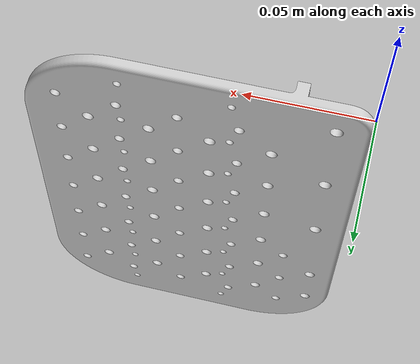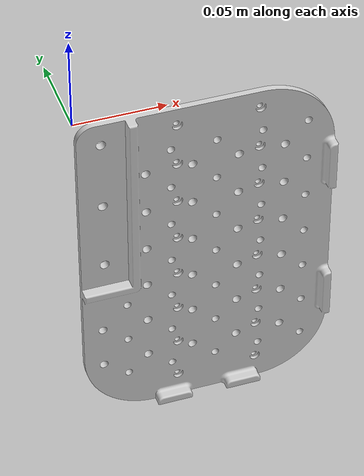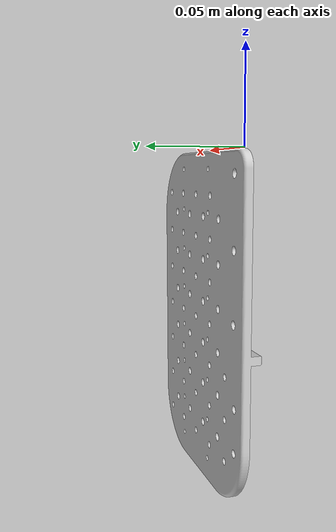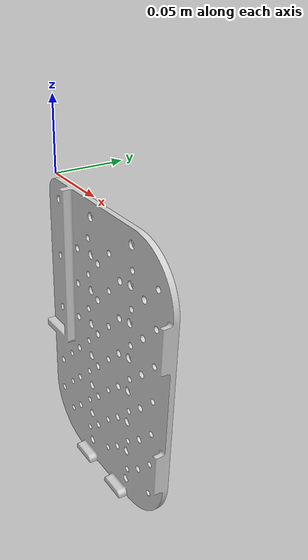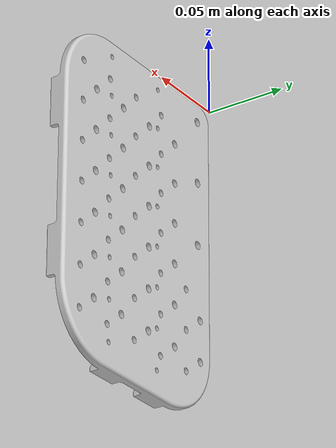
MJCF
<mujoco model="lift_camera_mount">
  <default>
    <default class="visual">
      <geom group="2" type="mesh" contype="0" conaffinity="0"/>
    </default>
    <default class="collision">
      <geom group="3" type="mesh"/>
    </default>
  </default>
  <asset>
    <material name="mtl_lift_camera_mount" specular="0.20000000000000004" shininess="1.0" rgba="0.80000000 0.80000000 0.80000000 1.0"/>
    <mesh file="lift_camera_mount.obj"/>
  </asset>
  <worldbody>
    <body name="lift_camera_mount">
      <geom material="mtl_lift_camera_mount" mesh="lift_camera_mount" class="visual"/>
      <geom mesh="lift_camera_mount" class="collision"/>
    </body>
  </worldbody>
</mujoco>
